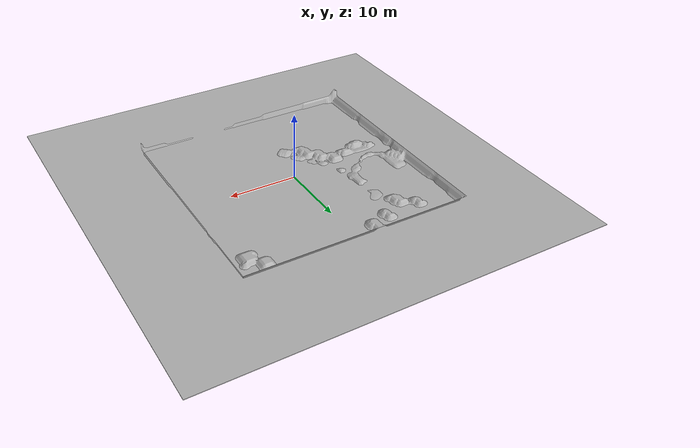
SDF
<?xml version="1.0" ?>
<sdf version="1.5">
  <world name="example_underwater">
    <physics name="default_physics" default="true" type="ode">
      <max_step_size>0.002</max_step_size>
      <real_time_factor>1</real_time_factor>
      <real_time_update_rate>500</real_time_update_rate>
      <ode>
        <solver>
          <type>quick</type>
          <iters>50</iters>
          <sor>0.5</sor>
        </solver>
      </ode>
    </physics>
    <scene>
      <ambient>0.01 0.01 0.01 1.0</ambient>
      <sky>
        <clouds>
          <speed>12</speed>
        </clouds>
      </sky>
      <shadows>1</shadows>
    </scene>

    <!-- Global light source -->
    <include>
      <uri>model://sun</uri>
    </include>

    <include>
      <uri>model://seabed</uri>
      <pose>0 0 0 0 0 0</pose>
    </include>

    <plugin name="underwater_world" filename="libuuv_underwater_world_ros_plugin.so">
      <namespace>hydrodynamics</namespace>
      <constant_current>
        <topic>current_velocity</topic>
        <velocity>
          <mean>0</mean>
          <min>0</min>
          <max>5</max>
          <mu>0.0</mu>
          <noiseAmp>0.0</noiseAmp>
        </velocity>

        <direction>
          <mean>0</mean>
          <min>-1.5707963267948966</min>
          <max>1.5707963267948966</max>
          <mu>0.0</mu>
          <noiseAmp>0.0</noiseAmp>
        </direction>
      </constant_current>
    </plugin>

  </world>
</sdf>

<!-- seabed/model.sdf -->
<sdf version="1.5">

<model name="seabed">
  <static>true</static>
  <link name="seabed_link">

  <visual name="surface">
    <cast_shadows>false</cast_shadows>
    <pose>0 0 0 0 0 0</pose>
    <geometry>
      <box>
        <size>60 60 .1</size>
      </box>
    </geometry>
    <material>
      <script>
        <uri>model://ocean_box/materials/scripts</uri>
        <uri>model://ocean_box/materials/textures</uri>
        <name>UUV/Water</name>
      </script>
    </material>
  </visual>

  <visual name="seafloor">
    <pose>0 0 0 0 0 0</pose>
    <geometry>
      <mesh><uri>model://seabed/seabed.stl</uri><scale>1 1 1</scale></mesh>
    </geometry>
    <material>
      <script>
        <uri>model://ocean/materials/scripts</uri>
        <uri>model://ocean/materials/textures</uri>
        <name>Sand</name>
      </script>
    </material>
  </visual>

  <collision name="seafloor">
    <pose>0 0 0 0 0 0</pose>
    <geometry>
      <mesh><uri>model://seabed/seabed.stl</uri><scale>1 1 1</scale></mesh>
    </geometry>
  </collision>

  </link>
</model>
</sdf>
